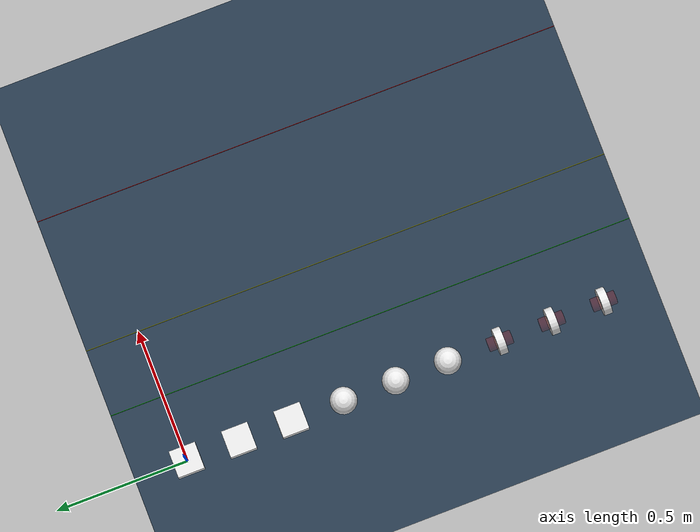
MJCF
<mujoco model="friction_1">
  <option gravity="1.0 0 -1.0" timestep="0.001" tolerance="0" >
    <flag multiccd="enable" nativeccd="enable"/>
  </option>

  <visual>
    <rgba haze="0.15 0.25 0.35 1"/>
    <quality shadowsize="4096"/>
    <map stiffness="700" shadowscale="0.5" fogstart="1" fogend="15" zfar="40" haze="1"/>
  </visual>

  <asset>
    <texture type="skybox" builtin="gradient" rgb1="0.3 0.5 0.7" rgb2="0 0 0" width="512" height="512"/>
    <texture name="texplane" type="2d" builtin="checker" rgb1=".2 .3 .4" rgb2=".1 0.15 0.2"
      width="512" height="512" mark="cross" markrgb=".8 .8 .8"/>

    <material name="matplane" reflectance="0.3" texture="texplane" texrepeat="10 10" texuniform="true"/>
  </asset>

  <worldbody>
    <light diffuse=".4 .4 .4" specular="0.1 0.1 0.1" pos="0 0 10.0" dir="0 0 -1" castshadow="false"/>
    <light directional="true" diffuse=".8 .8 .8" specular="0.2 0.2 0.2" pos="0 0 10" dir="0 0 -1"/>

    <geom name="ground" type="plane" size="2 1 1" pos="1.5 -0.8 0" quat="1 0 0 0" material="matplane" condim="1" friction="0 0 0"/>
    <site name="line_2_x" type="cylinder" pos="1.0 -0.8 0.0" size="0.001 1" rgba="1 0 0 1" quat="1 1 0 0"/>
    <site name="line_0.5_x" type="cylinder" pos="0.5 -0.8 0.0" size="0.001 1" rgba="1 1 0 1" quat="1 1 0 0"/>
    <site name="line_0.25_x" type="cylinder" pos="0.25 -0.8 0.0" size="0.001 1" rgba="0 1 0 1" quat="1 1 0 0"/>
  </worldbody>

  <worldbody>
    <body name="box_1" pos="0.0 0.0 0.05">
      <freejoint />
      <inertial pos="0 0 0" mass="1" diaginertia="1E9 1E9 1E9" />
      <geom name="box_1_geom" type="box" size="0.05 0.05 0.05" rgba="0.9 0.9 0.9 1.0" condim="3" friction="0 0 0"/>
    </body>

    <body name="box_2" pos="0.0 -0.2 0.05">
      <freejoint />
      <inertial pos="0 0 0" mass="1" diaginertia="1E9 1E9 1E9" />
      <geom name="box_2_geom" type="box" size="0.05 0.05 0.05" rgba="0.9 0.9 0.9 1.0" condim="3" friction="0.5 0 0"/>
    </body>

    <body name="box_3" pos="0.0 -0.4 0.05">
      <freejoint />
      <inertial pos="0 0 0" mass="1" diaginertia="1E9 1E9 1E9" />
      <geom name="box_3_geom" type="box" size="0.05 0.05 0.05" rgba="0.9 0.9 0.9 1.0" condim="3" friction="1.0 0 0"/>
    </body>

    <body name="sphere_1" pos="0.0 -0.6 0.05">
      <freejoint />
      <inertial pos="0 0 0" mass="1" diaginertia="1E-9 1E-9 1E-9" />
      <geom name="sphere_1_geom" type="sphere" size="0.05" rgba="0.9 0.9 0.9 1.0" condim="6" friction="1.0 0 0"/>
    </body>

    <body name="sphere_2" pos="0.0 -0.8 0.05">
      <freejoint />
      <inertial pos="0 0 0" mass="1" diaginertia="1E-9 1E-9 1E-9" />
      <geom name="sphere_2_geom" type="sphere" size="0.05" rgba="0.9 0.9 0.9 1.0" condim="6" friction="1.0 0.0 0.05"/>
    </body>

    <body name="sphere_3" pos="0.0 -1.0 0.05">
      <freejoint />
      <inertial pos="0 0 0" mass="1" diaginertia="1E-9 1E-9 1E-9" />
      <geom name="sphere_3_geom" type="sphere" size="0.05" rgba="0.9 0.9 0.9 1.0" condim="6" friction="1.0 0.0 0.1"/>
    </body>

    <body name="cylinder_1" pos="0.0 -1.2 0.05">
      <joint name="cylinder_1_joint_1" type="slide" axis="1 0 0" />
      <joint name="cylinder_1_joint_2" type="slide" axis="0 0 1" />
      <inertial pos="0 0 0" mass="1E-9" diaginertia="1E-9 1E-9 1E-9" />

      <body name="cylinder_1_main" >
        <joint name="cylinder_1_main_joint" type="hinge" axis="0 1 0" />
        <inertial pos="0 0 0" mass="1" diaginertia="1E-9 1E-9 1E-9" />
        <geom name="cylinder_1_main_geom" euler="90.0 0 0" type="cylinder" size="0.05 0.015" rgba="0.9 0.9 0.9 1.0" condim="4" friction="1 0 0" />
      </body>

      <body name="cylinder_1_pressure_1" pos="0.0 0.03 0.0">
        <joint name="cylinder_1_pressure_1_joint_2" type="slide" axis="0 1 0" stiffness="1" springref="-1"/>
        <inertial pos="0 0 0" mass="1" diaginertia="1E-9 1E-9 1E-9" />
        <geom name="cylinder_1_pressure_1_geom" euler="90.0 0 0" type="cylinder" size="0.025 0.015" rgba="0.9 0.0 0.0 0.2" condim="4" friction="0 0 0" priority="1"/>
      </body>

      <body name="cylinder_1_pressure_2" pos="0.0 -0.03 0.0">
        <joint name="cylinder_1_pressure_2_joint_2" type="slide" axis="0 1 0" stiffness="1" springref="1"/>
        <inertial pos="0 0 0" mass="1" diaginertia="1E-9 1E-9 1E-9" />
        <geom name="cylinder_1_pressure_2_geom" euler="90.0 0 0" type="cylinder" size="0.025 0.015" rgba="0.9 0.0 0.0 0.2" condim="4" friction="0 0 0" priority="1"/>
      </body>
    </body>

    <body name="cylinder_2" pos="0.0 -1.4 0.05">
      <joint name="cylinder_2_joint_1" type="slide" axis="1 0 0" />
      <joint name="cylinder_2_joint_2" type="slide" axis="0 0 1" />
      <inertial pos="0 0 0" mass="1E-9" diaginertia="1E-9 1E-9 1E-9" />

      <body name="cylinder_2_main" >
        <joint name="cylinder_2_main_joint" type="hinge" axis="0 1 0" />
        <inertial pos="0 0 0" mass="1" diaginertia="1E-9 1E-9 1E-9" />
        <geom name="cylinder_2_main_geom" euler="90.0 0 0" type="cylinder" size="0.05 0.015" rgba="0.9 0.9 0.9 1.0" condim="4" friction="1 0 0" />
      </body>

      <body name="cylinder_2_pressure_1" pos="0.0 0.03 0.0">
        <joint name="cylinder_2_pressure_1_joint_2" type="slide" axis="0 1 0" stiffness="1" springref="-1"/>
        <inertial pos="0 0 0" mass="1" diaginertia="1E-9 1E-9 1E-9" />
        <geom name="cylinder_2_pressure_1_geom" euler="90.0 0 0" type="cylinder" size="0.025 0.015" rgba="0.9 0.0 0.0 0.2" condim="4" friction="0 0.05 0" priority="1"/>
      </body>

      <body name="cylinder_2_pressure_2" pos="0.0 -0.03 0.0">
        <joint name="cylinder_2_pressure_2_joint_2" type="slide" axis="0 1 0" stiffness="1" springref="1"/>
        <inertial pos="0 0 0" mass="1" diaginertia="1E-9 1E-9 1E-9" />
        <geom name="cylinder_2_pressure_2_geom" euler="90.0 0 0" type="cylinder" size="0.025 0.015" rgba="0.9 0.0 0.0 0.2" condim="4" friction="0 0.05 0" priority="1"/>
      </body>
    </body>

    <body name="cylinder_3" pos="0.0 -1.6 0.05">
      <joint name="cylinder_3_joint_1" type="slide" axis="1 0 0" />
      <joint name="cylinder_3_joint_2" type="slide" axis="0 0 1" />
      <inertial pos="0 0 0" mass="1E-9" diaginertia="1E-9 1E-9 1E-9" />

      <body name="cylinder_3_main" >
        <joint name="cylinder_3_main_joint" type="hinge" axis="0 1 0" />
        <inertial pos="0 0 0" mass="1" diaginertia="1E-9 1E-9 1E-9" />
        <geom name="cylinder_3_main_geom" euler="90.0 0 0" type="cylinder" size="0.05 0.015" rgba="0.9 0.9 0.9 1.0" condim="4" friction="1 0 0" />
      </body>

      <body name="cylinder_3_pressure_1" pos="0.0 0.03 0.0">
        <joint name="cylinder_3_pressure_1_joint_2" type="slide" axis="0 1 0" stiffness="1" springref="-1"/>
        <inertial pos="0 0 0" mass="1" diaginertia="1E-9 1E-9 1E-9" />
        <geom name="cylinder_3_pressure_1_geom" euler="90.0 0 0" type="cylinder" size="0.025 0.015" rgba="0.9 0.0 0.0 0.2" condim="4" friction="0 0.1 0" priority="1"/>
      </body>

      <body name="cylinder_3_pressure_2" pos="0.0 -0.03 0.0">
        <joint name="cylinder_3_pressure_2_joint_2" type="slide" axis="0 1 0" stiffness="1" springref="1"/>
        <inertial pos="0 0 0" mass="1" diaginertia="1E-9 1E-9 1E-9" />
        <geom name="cylinder_3_pressure_2_geom" euler="90.0 0 0" type="cylinder" size="0.025 0.015" rgba="0.9 0.0 0.0 0.2" condim="4" friction="0 0.1 0" priority="1"/>
      </body>
    </body>
  </worldbody>

  <sensor>
    <framepos name="box_1_pos" objtype="body" objname="box_1" />
    <framepos name="box_2_pos" objtype="body" objname="box_2" />
    <framepos name="box_3_pos" objtype="body" objname="box_3" />
    <framepos name="sphere_1_pos" objtype="body" objname="sphere_1" />
    <framepos name="sphere_2_pos" objtype="body" objname="sphere_2" />
    <framepos name="sphere_3_pos" objtype="body" objname="sphere_3" />
    <framepos name="cylinder_1_pos" objtype="body" objname="cylinder_1" />
    <framepos name="cylinder_2_pos" objtype="body" objname="cylinder_2" />
    <framepos name="cylinder_3_pos" objtype="body" objname="cylinder_3" />
  </sensor>
</mujoco>
